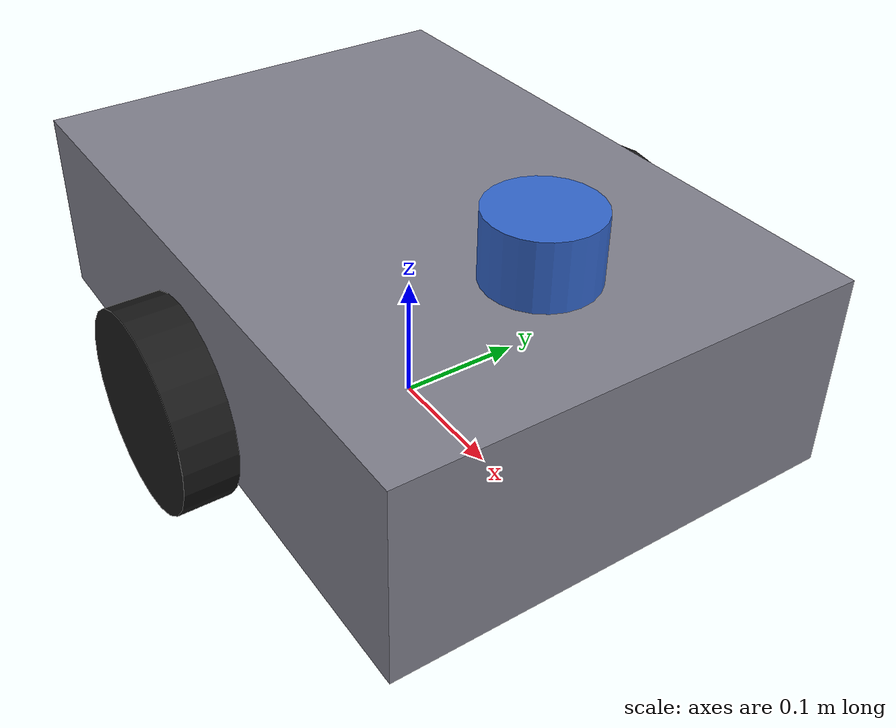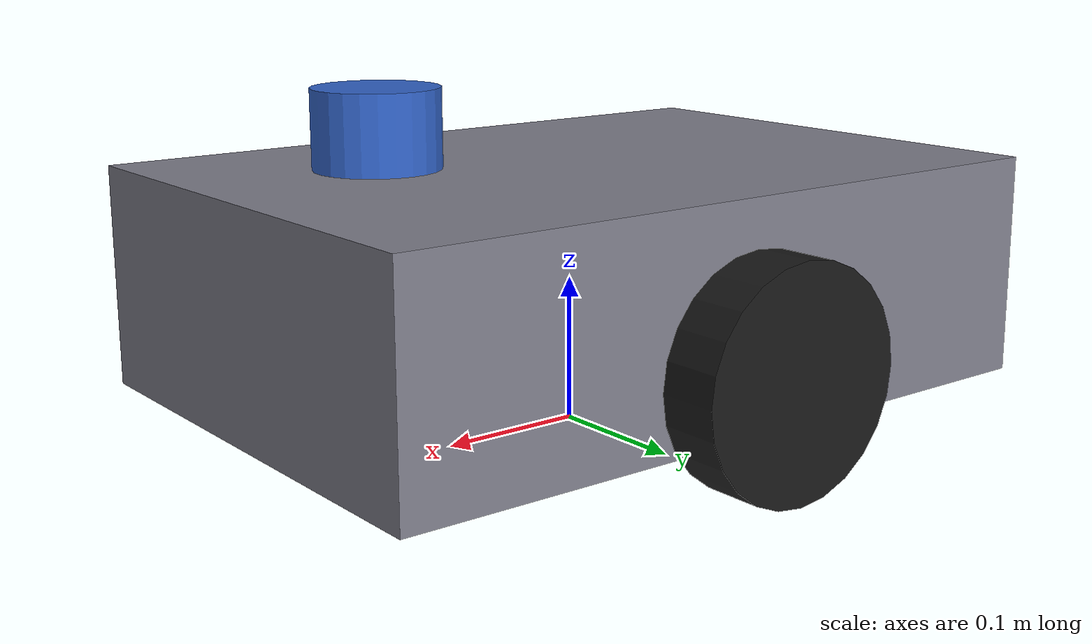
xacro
<?xml version="1.0"?>
<robot xmlns:xacro="http://www.ros.org/wiki/xacro" name="amr">
  <xacro:property name="L" value="0.50"/>
  <xacro:property name="W" value="0.35"/>
  <xacro:property name="H" value="0.15"/>
  <xacro:property name="M" value="12.0"/>
  <xacro:property name="wr" value="0.075"/>   <!-- wheel radius -->
  <xacro:property name="ww" value="0.04"/>    <!-- wheel width -->
  <xacro:property name="wsep" value="0.40"/>  <!-- wheel separation -->
  <xacro:property name="cr" value="0.03"/>    <!-- caster radius -->

  <material name="grey"><color rgba="0.5 0.5 0.55 1"/></material>
  <material name="black"><color rgba="0.1 0.1 0.1 1"/></material>
  <material name="blue"><color rgba="0.2 0.4 0.8 1"/></material>

  <xacro:macro name="box_inertia" params="m x y z">
    <inertial><mass value="${m}"/>
      <inertia ixx="${m*(y*y+z*z)/12}" iyy="${m*(x*x+z*z)/12}" izz="${m*(x*x+y*y)/12}" ixy="0" ixz="0" iyz="0"/>
    </inertial>
  </xacro:macro>

  <!-- base -->
  <link name="base_footprint"/>
  <joint name="footprint_joint" type="fixed">
    <parent link="base_footprint"/><child link="base_link"/>
    <origin xyz="0 0 ${wr}"/>
  </joint>
  <link name="base_link">
    <visual><origin xyz="0 0 0.03"/><geometry><box size="${L} ${W} ${H}"/></geometry><material name="grey"/></visual>
    <collision><origin xyz="0 0 0.03"/><geometry><box size="${L} ${W} ${H}"/></geometry></collision>
    <xacro:box_inertia m="${M}" x="${L}" y="${W}" z="${H}"/>
  </link>

  <!-- wheels (child z axis = axle, rotated onto +y) -->
  <xacro:macro name="wheel" params="name y">
    <link name="${name}_wheel_link">
      <visual><geometry><cylinder radius="${wr}" length="${ww}"/></geometry><material name="black"/></visual>
      <collision><geometry><cylinder radius="${wr}" length="${ww}"/></geometry></collision>
      <inertial><mass value="1.0"/>
        <inertia ixx="${(3*wr*wr+ww*ww)/12}" iyy="${(3*wr*wr+ww*ww)/12}" izz="${wr*wr/2}" ixy="0" ixz="0" iyz="0"/>
      </inertial>
    </link>
    <joint name="${name}_wheel_joint" type="continuous">
      <parent link="base_link"/><child link="${name}_wheel_link"/>
      <origin xyz="0 ${y} 0" rpy="${-pi/2} 0 0"/><axis xyz="0 0 1"/>
    </joint>
    <gazebo reference="${name}_wheel_link"><mu1>1.0</mu1><mu2>1.0</mu2></gazebo>
  </xacro:macro>
  <xacro:wheel name="left"  y="${wsep/2}"/>
  <xacro:wheel name="right" y="${-wsep/2}"/>

  <!-- casters: frictionless spheres -->
  <xacro:macro name="caster" params="name x">
    <link name="${name}_caster_link">
      <visual><geometry><sphere radius="${cr}"/></geometry><material name="black"/></visual>
      <collision><geometry><sphere radius="${cr}"/></geometry></collision>
      <inertial><mass value="0.2"/>
        <inertia ixx="${0.4*0.2*cr*cr}" iyy="${0.4*0.2*cr*cr}" izz="${0.4*0.2*cr*cr}" ixy="0" ixz="0" iyz="0"/>
      </inertial>
    </link>
    <joint name="${name}_caster_joint" type="fixed">
      <parent link="base_link"/><child link="${name}_caster_link"/>
      <origin xyz="${x} 0 ${cr-wr}"/>
    </joint>
    <gazebo reference="${name}_caster_link"><mu1>0.0</mu1><mu2>0.0</mu2></gazebo>
  </xacro:macro>
  <xacro:caster name="front" x="0.20"/>
  <xacro:caster name="rear"  x="-0.20"/>

  <!-- LiDAR -->
  <link name="lidar_link">
    <visual><geometry><cylinder radius="0.04" length="0.05"/></geometry><material name="blue"/></visual>
    <inertial><mass value="0.2"/><inertia ixx="1e-4" iyy="1e-4" izz="1e-4" ixy="0" ixz="0" iyz="0"/></inertial>
  </link>
  <joint name="lidar_joint" type="fixed">
    <parent link="base_link"/><child link="lidar_link"/><origin xyz="0.15 0 0.14"/>
  </joint>
  <gazebo reference="lidar_link">
    <sensor name="lidar" type="gpu_lidar">
      <always_on>true</always_on><update_rate>10</update_rate>
      <topic>scan</topic><gz_frame_id>lidar_link</gz_frame_id>
      <lidar>
        <scan><horizontal><samples>720</samples><min_angle>-3.14159</min_angle><max_angle>3.14159</max_angle></horizontal></scan>
        <range><min>0.15</min><max>12.0</max></range>
        <noise><type>gaussian</type><mean>0.0</mean><stddev>0.01</stddev></noise>
      </lidar>
    </sensor>
  </gazebo>

  <!-- IMU -->
  <link name="imu_link">
    <inertial><mass value="0.05"/><inertia ixx="1e-5" iyy="1e-5" izz="1e-5" ixy="0" ixz="0" iyz="0"/></inertial>
  </link>
  <joint name="imu_joint" type="fixed">
    <parent link="base_link"/><child link="imu_link"/><origin xyz="0 0 0.05"/>
  </joint>
  <gazebo reference="imu_link">
    <sensor name="imu" type="imu">
      <always_on>true</always_on><update_rate>100</update_rate>
      <topic>imu</topic><gz_frame_id>imu_link</gz_frame_id>
      <imu>
        <angular_velocity>
          <x><noise type="gaussian"><mean>0.0</mean><stddev>0.002</stddev></noise></x>
          <y><noise type="gaussian"><mean>0.0</mean><stddev>0.002</stddev></noise></y>
          <z><noise type="gaussian"><mean>0.0</mean><stddev>0.002</stddev></noise></z>
        </angular_velocity>
        <linear_acceleration>
          <x><noise type="gaussian"><mean>0.0</mean><stddev>0.02</stddev></noise></x>
          <y><noise type="gaussian"><mean>0.0</mean><stddev>0.02</stddev></noise></y>
          <z><noise type="gaussian"><mean>0.0</mean><stddev>0.02</stddev></noise></z>
        </linear_acceleration>
      </imu>
    </sensor>
  </gazebo>

  <!-- ros2_control -->
  <ros2_control name="GazeboSystem" type="system">
    <hardware><plugin>gz_ros2_control/GazeboSimSystem</plugin></hardware>
    <joint name="left_wheel_joint">
      <command_interface name="velocity"/>
      <state_interface name="position"/><state_interface name="velocity"/>
    </joint>
    <joint name="right_wheel_joint">
      <command_interface name="velocity"/>
      <state_interface name="position"/><state_interface name="velocity"/>
    </joint>
  </ros2_control>
  <gazebo>
    <plugin filename="gz_ros2_control-system" name="gz_ros2_control::GazeboSimROS2ControlPlugin">
      <parameters>$(find amr_control)/config/controllers.yaml</parameters>
    </plugin>
  </gazebo>

  <!-- ground truth for evaluation only, never fed to any estimator -->
  <gazebo>
    <plugin filename="gz-sim-odometry-publisher-system" name="gz::sim::systems::OdometryPublisher">
      <odom_frame>world</odom_frame>
      <robot_base_frame>base_footprint</robot_base_frame>
      <odom_topic>ground_truth/odom</odom_topic>
      <tf_topic>ground_truth/tf</tf_topic>
      <dimensions>2</dimensions>
    </plugin>
  </gazebo>
</robot>
